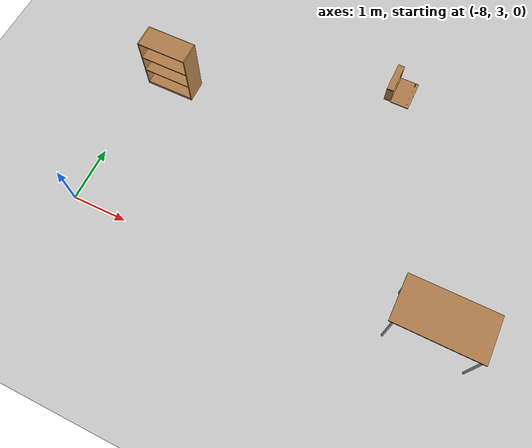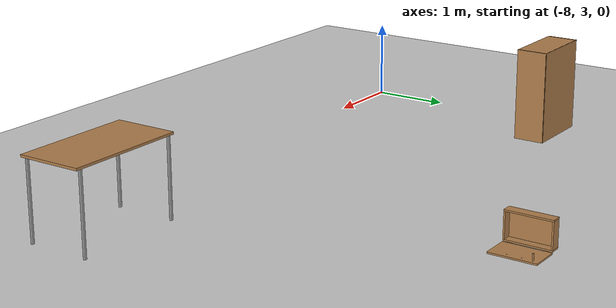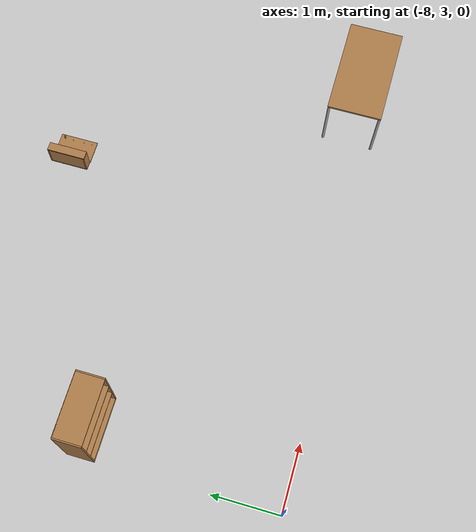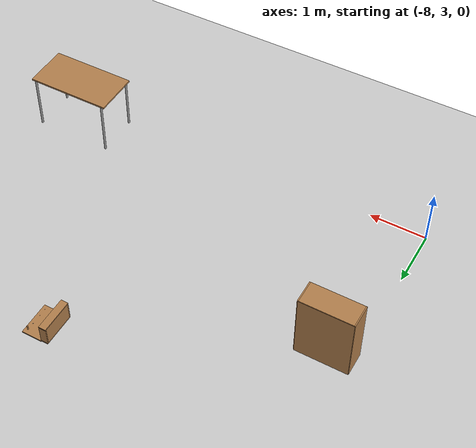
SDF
<sdf version="1.6">
 <world name="default">
  <model name="ground_plane">
   <static>1</static>
   <link name="link">
    <collision name="collision">
     <geometry><plane><normal>0 0 1</normal><size>100 100</size></plane></geometry>
     <surface>
      <contact><collide_bitmask>65535</collide_bitmask></contact>
      <friction><ode><mu>100</mu><mu2>50</mu2></ode></friction>
     </surface>
    </collision>
    <visual name="visual">
     <cast_shadows>0</cast_shadows>
     <geometry><plane><normal>0 0 1</normal><size>100 100</size></plane></geometry>
     <material>
      <script><uri>file://media/materials/scripts/gazebo.material</uri><name>Gazebo/Grey</name></script>
     </material>
    </visual>
   </link>
  </model>
  <model name="bookshelf">
   <static>1</static>
   <link name="link">
    <inertial><mass>1</mass></inertial>
    <collision name="back">
     <pose>0 0.005 0.6 0 -0 0</pose>
     <geometry><box><size>0.9 0.01 1.2</size></box></geometry>
    </collision>
    <visual name="visual1">
     <pose>0 0.005 0.6 0 -0 0</pose>
     <geometry><box><size>0.9 0.01 1.2</size></box></geometry>
     <material>
      <script><uri>file://media/materials/scripts/gazebo.material</uri><name>Gazebo/Wood</name></script>
     </material>
    </visual>
    <collision name="left_side">
     <pose>0.45 -0.195 0.6 0 -0 0</pose>
     <geometry><box><size>0.02 0.4 1.2</size></box></geometry>
    </collision>
    <visual name="visual2">
     <pose>0.45 -0.195 0.6 0 -0 0</pose>
     <geometry><box><size>0.02 0.4 1.2</size></box></geometry>
     <material>
      <script><uri>file://media/materials/scripts/gazebo.material</uri><name>Gazebo/Wood</name></script>
     </material>
    </visual>
    <collision name="right_side">
     <pose>-0.45 -0.195 0.6 0 -0 0</pose>
     <geometry><box><size>0.02 0.4 1.2</size></box></geometry>
    </collision>
    <visual name="visual3">
     <pose>-0.45 -0.195 0.6 0 -0 0</pose>
     <geometry><box><size>0.02 0.4 1.2</size></box></geometry>
     <material>
      <script><uri>file://media/materials/scripts/gazebo.material</uri><name>Gazebo/Wood</name></script>
     </material>
    </visual>
    <collision name="bottom">
     <pose>0 -0.195 0.03 0 -0 0</pose>
     <geometry><box><size>0.88 0.4 0.06</size></box></geometry>
    </collision>
    <visual name="visual4">
     <pose>0 -0.195 0.03 0 -0 0</pose>
     <geometry><box><size>0.88 0.4 0.06</size></box></geometry>
     <material>
      <script><uri>file://media/materials/scripts/gazebo.material</uri><name>Gazebo/Wood</name></script>
     </material>
    </visual>
    <collision name="top">
     <pose>0 -0.195 1.19 0 -0 0</pose>
     <geometry><box><size>0.88 0.4 0.02</size></box></geometry>
    </collision>
    <visual name="visual5">
     <pose>0 -0.195 1.19 0 -0 0</pose>
     <geometry><box><size>0.88 0.4 0.02</size></box></geometry>
     <material>
      <script><uri>file://media/materials/scripts/gazebo.material</uri><name>Gazebo/Wood</name></script>
     </material>
    </visual>
    <collision name="low_shelf">
     <pose>0 -0.195 0.43 0 -0 0</pose>
     <geometry><box><size>0.88 0.4 0.02</size></box></geometry>
    </collision>
    <visual name="visual6">
     <pose>0 -0.195 0.43 0 -0 0</pose>
     <geometry><box><size>0.88 0.4 0.02</size></box></geometry>
     <material>
      <script><uri>file://media/materials/scripts/gazebo.material</uri><name>Gazebo/Wood</name></script>
     </material>
    </visual>
    <collision name="high_shelf">
     <pose>0 -0.195 0.8 0 -0 0</pose>
     <geometry><box><size>0.88 0.4 0.02</size></box></geometry>
    </collision>
    <visual name="visual7">
     <pose>0 -0.195 0.8 0 -0 0</pose>
     <geometry><box><size>0.88 0.4 0.02</size></box></geometry>
     <material>
      <script><uri>file://media/materials/scripts/gazebo.material</uri><name>Gazebo/Wood</name></script>
     </material>
    </visual>
   </link>
   <pose>-7.57156 6.02556 0 0 -0 0</pose>
  </model>
  <model name="table_1">
   <static>1</static>
   <link name="link">
    <collision name="surface">
     <pose>0 0 1 0 -0 0</pose>
     <geometry><box><size>1.5 0.8 0.03</size></box></geometry>
     <surface><friction><ode><mu>0.6</mu><mu2>0.6</mu2></ode></friction></surface>
    </collision>
    <visual name="visual1">
     <pose>0 0 1 0 -0 0</pose>
     <geometry><box><size>1.5 0.8 0.03</size></box></geometry>
     <material>
      <script><uri>file://media/materials/scripts/gazebo.material</uri><name>Gazebo/Wood</name></script>
     </material>
    </visual>
    <collision name="front_left_leg">
     <pose>0.68 0.38 0.5 0 -0 0</pose>
     <geometry><cylinder><radius>0.02</radius><length>1</length></cylinder></geometry>
    </collision>
    <visual name="front_left_leg">
     <pose>0.68 0.38 0.5 0 -0 0</pose>
     <geometry><cylinder><radius>0.02</radius><length>1</length></cylinder></geometry>
     <material>
      <script><uri>file://media/materials/scripts/gazebo.material</uri><name>Gazebo/Grey</name></script>
     </material>
    </visual>
    <collision name="front_right_leg">
     <pose>0.68 -0.38 0.5 0 -0 0</pose>
     <geometry><cylinder><radius>0.02</radius><length>1</length></cylinder></geometry>
    </collision>
    <visual name="front_right_leg">
     <pose>0.68 -0.38 0.5 0 -0 0</pose>
     <geometry><cylinder><radius>0.02</radius><length>1</length></cylinder></geometry>
     <material>
      <script><uri>file://media/materials/scripts/gazebo.material</uri><name>Gazebo/Grey</name></script>
     </material>
    </visual>
    <collision name="back_right_leg">
     <pose>-0.68 -0.38 0.5 0 -0 0</pose>
     <geometry><cylinder><radius>0.02</radius><length>1</length></cylinder></geometry>
    </collision>
    <visual name="back_right_leg">
     <pose>-0.68 -0.38 0.5 0 -0 0</pose>
     <geometry><cylinder><radius>0.02</radius><length>1</length></cylinder></geometry>
     <material>
      <script><uri>file://media/materials/scripts/gazebo.material</uri><name>Gazebo/Grey</name></script>
     </material>
    </visual>
    <collision name="back_left_leg">
     <pose>-0.68 0.38 0.5 0 -0 0</pose>
     <geometry><cylinder><radius>0.02</radius><length>1</length></cylinder></geometry>
    </collision>
    <visual name="back_left_leg">
     <pose>-0.68 0.38 0.5 0 -0 0</pose>
     <geometry><cylinder><radius>0.02</radius><length>1</length></cylinder></geometry>
     <material>
      <script><uri>file://media/materials/scripts/gazebo.material</uri><name>Gazebo/Grey</name></script>
     </material>
    </visual>
   </link>
   <pose>-1.59069 3.48064 0 0 -0 0</pose>
  </model>
  <model name="wooden_case_wooden_peg">
   <link name="wooden_case::base">
    <pose>0 0 0.024 0 -0 0</pose>
    <inertial>
     <pose>-0.022184 0 0.171592 0 -0 0</pose>
     <mass>3.96264</mass>
     <inertia>
      <ixx>0.213536</ixx>
      <ixy>0</ixy>
      <ixz>0.000779377</ixz>
      <iyy>0.0708943</iyy>
      <iyz>0</iyz>
      <izz>0.154604</izz>
     </inertia>
    </inertial>
    <collision name="collision_back">
     <pose>-0.053975 0 0.1778 0 -0 0</pose>
     <geometry><box><size>0.01905 0.5461 0.3175</size></box></geometry>
     <surface>
      <contact>
       <poissons_ratio>0.347</poissons_ratio>
       <elastic_modulus>8.8e+09</elastic_modulus>
       <ode><kp>100000</kp><kd>100</kd><max_vel>100</max_vel><min_depth>0.001</min_depth></ode>
      </contact>
      <friction>
       <torsional>
        <coefficient>1</coefficient>
        <use_patch_radius>0</use_patch_radius>
        <surface_radius>0.01</surface_radius>
       </torsional>
      </friction>
     </surface>
    </collision>
    <visual name="visual_back">
     <pose>-0.053975 0 0.1778 0 -0 0</pose>
     <geometry><box><size>0.01905 0.5461 0.3175</size></box></geometry>
     <material>
      <script><uri>file://media/materials/scripts/gazebo.material</uri><name>Gazebo/Wood</name></script>
     </material>
    </visual>
    <collision name="collision_bottom">
     <pose>0 0 0.009525 0 -0 0</pose>
     <geometry><box><size>0.127 0.5842 0.01905</size></box></geometry>
     <surface>
      <contact>
       <poissons_ratio>0.347</poissons_ratio>
       <elastic_modulus>8.8e+09</elastic_modulus>
       <ode><kp>100000</kp><kd>100</kd><max_vel>100</max_vel><min_depth>0.001</min_depth></ode>
      </contact>
      <friction>
       <torsional>
        <coefficient>1</coefficient>
        <use_patch_radius>0</use_patch_radius>
        <surface_radius>0.01</surface_radius>
       </torsional>
      </friction>
     </surface>
    </collision>
    <visual name="visual_bottom">
     <pose>0 0 0.009525 0 -0 0</pose>
     <geometry><box><size>0.127 0.5842 0.01905</size></box></geometry>
     <material>
      <script><uri>file://media/materials/scripts/gazebo.material</uri><name>Gazebo/Wood</name></script>
     </material>
    </visual>
    <collision name="collision_top">
     <pose>0 0 0.346075 0 -0 0</pose>
     <geometry><box><size>0.127 0.5842 0.01905</size></box></geometry>
     <surface>
      <contact>
       <poissons_ratio>0.347</poissons_ratio>
       <elastic_modulus>8.8e+09</elastic_modulus>
       <ode><kp>100000</kp><kd>100</kd><max_vel>100</max_vel><min_depth>0.001</min_depth></ode>
      </contact>
      <friction>
       <torsional>
        <coefficient>1</coefficient>
        <use_patch_radius>0</use_patch_radius>
        <surface_radius>0.01</surface_radius>
       </torsional>
      </friction>
     </surface>
    </collision>
    <visual name="visual_top">
     <pose>0 0 0.346075 0 -0 0</pose>
     <geometry><box><size>0.127 0.5842 0.01905</size></box></geometry>
     <material>
      <script><uri>file://media/materials/scripts/gazebo.material</uri><name>Gazebo/Wood</name></script>
     </material>
    </visual>
    <collision name="collision_left">
     <pose>0 -0.282575 0.1778 0 -0 0</pose>
     <geometry><box><size>0.127 0.01905 0.3175</size></box></geometry>
     <surface>
      <contact>
       <poissons_ratio>0.347</poissons_ratio>
       <elastic_modulus>8.8e+09</elastic_modulus>
       <ode><kp>100000</kp><kd>100</kd><max_vel>100</max_vel><min_depth>0.001</min_depth></ode>
      </contact>
      <friction>
       <torsional>
        <coefficient>1</coefficient>
        <use_patch_radius>0</use_patch_radius>
        <surface_radius>0.01</surface_radius>
       </torsional>
      </friction>
     </surface>
    </collision>
    <visual name="visual_left">
     <pose>0 -0.282575 0.1778 0 -0 0</pose>
     <geometry><box><size>0.127 0.01905 0.3175</size></box></geometry>
     <material>
      <script><uri>file://media/materials/scripts/gazebo.material</uri><name>Gazebo/Wood</name></script>
     </material>
    </visual>
    <collision name="collision_right">
     <pose>0 0.282575 0.1778 0 -0 0</pose>
     <geometry><box><size>0.127 0.01905 0.3175</size></box></geometry>
     <surface>
      <contact>
       <poissons_ratio>0.347</poissons_ratio>
       <elastic_modulus>8.8e+09</elastic_modulus>
       <ode><kp>100000</kp><kd>100</kd><max_vel>100</max_vel><min_depth>0.001</min_depth></ode>
      </contact>
      <friction>
       <torsional>
        <coefficient>1</coefficient>
        <use_patch_radius>0</use_patch_radius>
        <surface_radius>0.01</surface_radius>
       </torsional>
      </friction>
     </surface>
    </collision>
    <visual name="visual_right">
     <pose>0 0.282575 0.1778 0 -0 0</pose>
     <geometry><box><size>0.127 0.01905 0.3175</size></box></geometry>
     <material>
      <script><uri>file://media/materials/scripts/gazebo.material</uri><name>Gazebo/Wood</name></script>
     </material>
    </visual>
    <collision name="collision_block_left">
     <pose>0.0095 -0.2151 -0.012 0 -0 0</pose>
     <geometry><box><size>0.108 0.05 0.024</size></box></geometry>
     <surface>
      <contact>
       <poissons_ratio>0.347</poissons_ratio>
       <elastic_modulus>8.8e+09</elastic_modulus>
       <ode><kp>100000</kp><kd>100</kd><max_vel>100</max_vel><min_depth>0.001</min_depth></ode>
      </contact>
      <friction>
       <torsional>
        <coefficient>1</coefficient>
        <use_patch_radius>0</use_patch_radius>
        <surface_radius>0.01</surface_radius>
       </torsional>
      </friction>
     </surface>
    </collision>
    <visual name="visual_block_left">
     <pose>0.0095 -0.2151 -0.012 0 -0 0</pose>
     <geometry><box><size>0.108 0.05 0.024</size></box></geometry>
     <material>
      <script><uri>file://media/materials/scripts/gazebo.material</uri><name>Gazebo/Wood</name></script>
     </material>
    </visual>
    <collision name="collision_block_right">
     <pose>0.0095 0.2151 -0.012 0 -0 0</pose>
     <geometry><box><size>0.108 0.05 0.024</size></box></geometry>
     <surface>
      <contact>
       <poissons_ratio>0.347</poissons_ratio>
       <elastic_modulus>8.8e+09</elastic_modulus>
       <ode><kp>100000</kp><kd>100</kd><max_vel>100</max_vel><min_depth>0.001</min_depth></ode>
      </contact>
      <friction>
       <torsional>
        <coefficient>1</coefficient>
        <use_patch_radius>0</use_patch_radius>
        <surface_radius>0.01</surface_radius>
       </torsional>
      </friction>
     </surface>
    </collision>
    <visual name="visual_block_right">
     <pose>0.0095 0.2151 -0.012 0 -0 0</pose>
     <geometry><box><size>0.108 0.05 0.024</size></box></geometry>
     <material>
      <script><uri>file://media/materials/scripts/gazebo.material</uri><name>Gazebo/Wood</name></script>
     </material>
    </visual>
   </link>
   <link name="wooden_case::lid">
    <pose>0.243775 0 0.009525 0 -0 0</pose>
    <inertial>
     <mass>1.97874</mass>
     <inertia>
      <ixx>0.0563367</ixx>
      <ixy>0</ixy>
      <ixz>0</ixz>
      <iyy>0.020911</iyy>
      <iyz>0</iyz>
      <izz>0.0771281</izz>
     </inertia>
    </inertial>
    <collision name="collision">
     <geometry><box><size>0.3556 0.5842 0.01905</size></box></geometry>
     <surface>
      <contact>
       <poissons_ratio>0.347</poissons_ratio>
       <elastic_modulus>8.8e+09</elastic_modulus>
       <ode><kp>100000</kp><kd>100</kd><max_vel>100</max_vel><min_depth>0.001</min_depth></ode>
      </contact>
      <friction>
       <torsional>
        <coefficient>1</coefficient>
        <use_patch_radius>0</use_patch_radius>
        <surface_radius>0.01</surface_radius>
       </torsional>
      </friction>
     </surface>
    </collision>
    <visual name="visual">
     <geometry><box><size>0.3556 0.5842 0.01905</size></box></geometry>
     <material>
      <script><uri>file://media/materials/scripts/gazebo.material</uri><name>Gazebo/Wood</name></script>
     </material>
    </visual>
    <visual name="tee_nut_1">
     <pose>0.122 -0.216 0 0 -0 0</pose>
     <geometry><cylinder><radius>0.00635</radius><length>0.0192405</length></cylinder></geometry>
     <material>
      <script><uri>file://media/materials/scripts/gazebo.material</uri><name>Gazebo/Grey</name></script>
     </material>
    </visual>
    <visual name="tee_nut_2">
     <pose>0.122 -0.088 0 0 -0 0</pose>
     <geometry><cylinder><radius>0.00635</radius><length>0.0192405</length></cylinder></geometry>
     <material>
      <script><uri>file://media/materials/scripts/gazebo.material</uri><name>Gazebo/Grey</name></script>
     </material>
    </visual>
    <visual name="tee_nut_3">
     <pose>0.122 0.088 0 0 -0 0</pose>
     <geometry><cylinder><radius>0.00635</radius><length>0.0192405</length></cylinder></geometry>
     <material>
      <script><uri>file://media/materials/scripts/gazebo.material</uri><name>Gazebo/Grey</name></script>
     </material>
    </visual>
    <visual name="tee_nut_4">
     <pose>0.122 0.216 0 0 -0 0</pose>
     <geometry><cylinder><radius>0.00635</radius><length>0.0192405</length></cylinder></geometry>
     <material>
      <script><uri>file://media/materials/scripts/gazebo.material</uri><name>Gazebo/Grey</name></script>
     </material>
    </visual>
   </link>
   <joint name="wooden_case::lid_hinge" type="revolute">
    <pose>-0.1778 0 0.01905 0 -0 0</pose>
    <parent>wooden_case::base</parent>
    <child>wooden_case::lid</child>
    <axis>
     <xyz>0 1 0</xyz>
     <limit><upper>0.523599</upper><lower>-1.5708</lower></limit>
     <use_parent_model_frame>0</use_parent_model_frame>
     <dynamics><spring_reference>0</spring_reference><spring_stiffness>0</spring_stiffness></dynamics>
    </axis>
   </joint>
   <link name="peg::link">
    <pose>0.365774 0.216 0.05905 0 -0 0</pose>
    <inertial>
     <mass>0.0175</mass>
     <inertia>
      <ixx>9.74923e-06</ixx>
      <ixy>0</ixy>
      <ixz>0</ixz>
      <iyy>9.74923e-06</iyy>
      <iyz>0</iyz>
      <izz>8.31797e-07</izz>
     </inertia>
    </inertial>
    <collision name="collision">
     <geometry><cylinder><radius>0.00975</radius><length>0.08</length></cylinder></geometry>
     <surface>
      <contact>
       <poissons_ratio>0.347</poissons_ratio>
       <elastic_modulus>8.8e+09</elastic_modulus>
       <ode><kp>100000</kp><kd>100</kd><max_vel>100</max_vel><min_depth>0.001</min_depth></ode>
      </contact>
      <friction>
       <torsional>
        <coefficient>1</coefficient>
        <use_patch_radius>0</use_patch_radius>
        <surface_radius>0.01</surface_radius>
       </torsional>
      </friction>
     </surface>
    </collision>
    <visual name="visual">
     <geometry><cylinder><radius>0.00975</radius><length>0.08</length></cylinder></geometry>
     <material>
      <script><uri>file://media/materials/scripts/gazebo.material</uri><name>Gazebo/Wood</name></script>
     </material>
    </visual>
   </link>
   <joint name="case_peg" type="revolute">
    <child>peg::link</child>
    <parent>wooden_case::lid</parent>
    <axis>
     <xyz>0 0 1</xyz>
     <limit><upper>0</upper><lower>0</lower></limit>
     <use_parent_model_frame>0</use_parent_model_frame>
     <dynamics><spring_reference>0</spring_reference><spring_stiffness>0</spring_stiffness></dynamics>
    </axis>
   </joint>
   <pose>-3.80484 7.50404 0 0 -0 0</pose>
  </model>
 </world>
</sdf>
